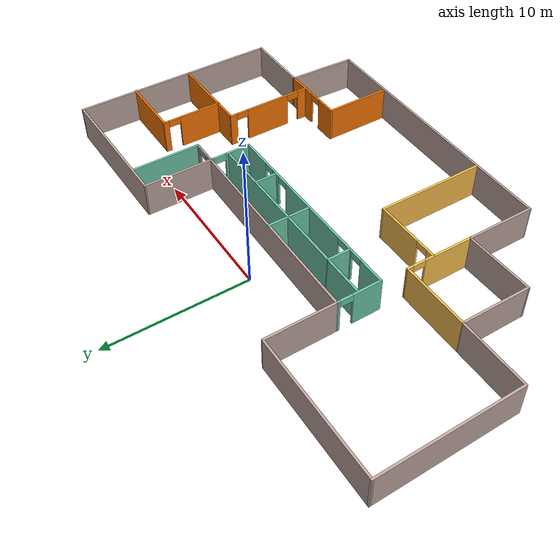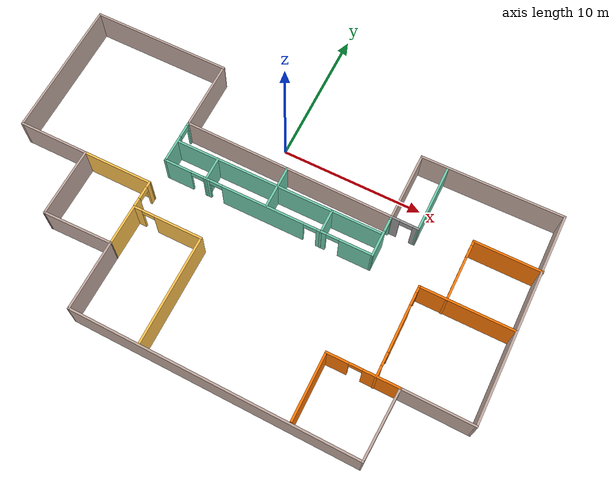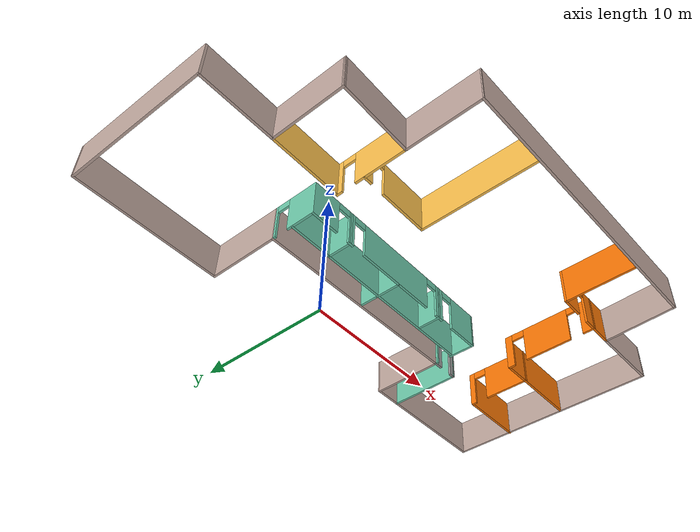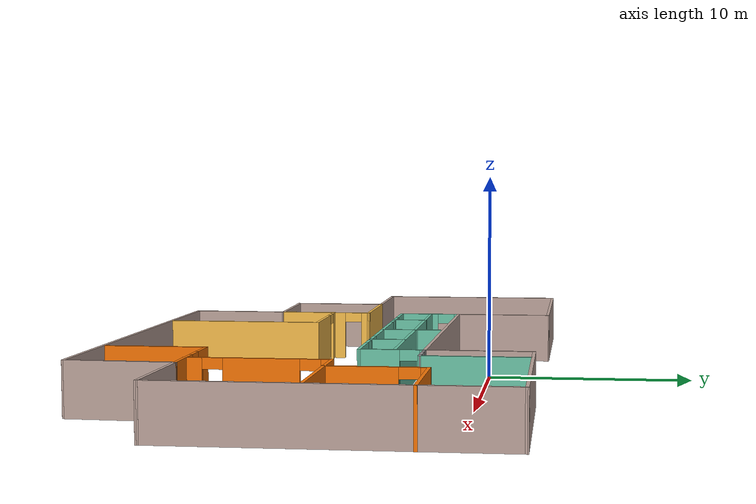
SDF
<?xml version='1.0'?>
<sdf version='1.6'>
  <model name='Building'>
    <pose frame=''>1.31373 -7.11076 0 0 -0 0</pose>
    <link name='Wall_0'>
      <collision name='Wall_0_Collision'>
        <geometry>
          <box>
            <size>10 0.15 2.5</size>
          </box>
        </geometry>
        <pose frame=''>0 0 1.25 0 -0 0</pose>
      </collision>
      <visual name='Wall_0_Visual'>
        <pose frame=''>0 0 1.25 0 -0 0</pose>
        <geometry>
          <box>
            <size>10 0.15 2.5</size>
          </box>
        </geometry>
        <material>
          <script>
            <uri>file://media/materials/scripts/gazebo.material</uri>
            <name>Gazebo/Grey</name>
          </script>
          <ambient>0.760784 0.662745 0.627451 1</ambient>
        </material>
        <meta>
          <layer>0</layer>
        </meta>
      </visual>
      <pose frame=''>-12.3733 9.85668 0 0 0 -0.001793</pose>
    </link>
    <link name='Wall_1'>
      <collision name='Wall_1_Collision'>
        <geometry>
          <box>
            <size>5 0.15 2.5</size>
          </box>
        </geometry>
        <pose frame=''>0 0 1.25 0 -0 0</pose>
      </collision>
      <visual name='Wall_1_Visual'>
        <pose frame=''>0 0 1.25 0 -0 0</pose>
        <geometry>
          <box>
            <size>5 0.15 2.5</size>
          </box>
        </geometry>
        <material>
          <script>
            <uri>file://media/materials/scripts/gazebo.material</uri>
            <name>Gazebo/Grey</name>
          </script>
          <ambient>0.760784 0.662745 0.627451 1</ambient>
        </material>
        <meta>
          <layer>0</layer>
        </meta>
      </visual>
      <pose frame=''>-7.44769 7.42291 0 0 0 -1.57056</pose>
    </link>
    <link name='Wall_10'>
      <collision name='Wall_10_Collision'>
        <geometry>
          <box>
            <size>4.99971 0.15 2.5</size>
          </box>
        </geometry>
        <pose frame=''>0 0 1.25 0 -0 0</pose>
      </collision>
      <visual name='Wall_10_Visual'>
        <pose frame=''>0 0 1.25 0 -0 0</pose>
        <geometry>
          <box>
            <size>4.99971 0.15 2.5</size>
          </box>
        </geometry>
        <material>
          <script>
            <uri>file://media/materials/scripts/gazebo.material</uri>
            <name>Gazebo/Grey</name>
          </script>
          <ambient>0.760784 0.662745 0.627451 1</ambient>
        </material>
        <meta>
          <layer>0</layer>
        </meta>
      </visual>
      <pose frame=''>-10.0229 -4.78917 0 0 0 -3.1229</pose>
    </link>
    <link name='Wall_11'>
      <collision name='Wall_11_Collision'>
        <geometry>
          <box>
            <size>5 0.15 2.5</size>
          </box>
        </geometry>
        <pose frame=''>0 0 1.25 0 -0 0</pose>
      </collision>
      <visual name='Wall_11_Visual'>
        <pose frame=''>0 0 1.25 0 -0 0</pose>
        <geometry>
          <box>
            <size>5 0.15 2.5</size>
          </box>
        </geometry>
        <material>
          <script>
            <uri>file://media/materials/scripts/gazebo.material</uri>
            <name>Gazebo/Grey</name>
          </script>
          <ambient>0.760784 0.662745 0.627451 1</ambient>
        </material>
        <meta>
          <layer>0</layer>
        </meta>
      </visual>
      <pose frame=''>-12.4242 -2.40949 0 0 -0 1.56126</pose>
    </link>
    <link name='Wall_12'>
      <collision name='Wall_12_Collision'>
        <geometry>
          <box>
            <size>5 0.15 2.5</size>
          </box>
        </geometry>
        <pose frame=''>0 0 1.25 0 -0 0</pose>
      </collision>
      <visual name='Wall_12_Visual'>
        <pose frame=''>0 0 1.25 0 -0 0</pose>
        <geometry>
          <box>
            <size>5 0.15 2.5</size>
          </box>
        </geometry>
        <material>
          <script>
            <uri>file://media/materials/scripts/gazebo.material</uri>
            <name>Gazebo/Grey</name>
          </script>
          <ambient>0.760784 0.662745 0.627451 1</ambient>
        </material>
        <meta>
          <layer>0</layer>
        </meta>
      </visual>
      <pose frame=''>-14.826 0.015509 0 0 -0 3.14159</pose>
    </link>
    <link name='Wall_13'>
      <collision name='Wall_13_Collision'>
        <geometry>
          <box>
            <size>10.001 0.15 2.5</size>
          </box>
        </geometry>
        <pose frame=''>0 0 1.25 0 -0 0</pose>
      </collision>
      <visual name='Wall_13_Visual'>
        <pose frame=''>0 0 1.25 0 -0 0</pose>
        <geometry>
          <box>
            <size>10.001 0.15 2.5</size>
          </box>
        </geometry>
        <material>
          <script>
            <uri>file://media/materials/scripts/gazebo.material</uri>
            <name>Gazebo/Grey</name>
          </script>
          <ambient>0.760784 0.662745 0.627451 1</ambient>
        </material>
        <meta>
          <layer>0</layer>
        </meta>
      </visual>
      <pose frame=''>-17.2978 4.94051 0 0 -0 1.57089</pose>
    </link>
    <link name='Wall_15'>
      <collision name='Wall_15_Collision'>
        <geometry>
          <box>
            <size>5 0.15 2.5</size>
          </box>
        </geometry>
        <pose frame=''>0 0 1.25 0 -0 0</pose>
      </collision>
      <visual name='Wall_15_Visual'>
        <pose frame=''>0 0 1.25 0 -0 0</pose>
        <geometry>
          <box>
            <size>5 0.15 2.5</size>
          </box>
        </geometry>
        <material>
          <script>
            <uri>file://media/materials/scripts/gazebo.material</uri>
            <name>Gazebo/Grey</name>
          </script>
          <ambient>1 0.764706 0.305882 1</ambient>
        </material>
        <meta>
          <layer>0</layer>
        </meta>
      </visual>
      <pose frame=''>-9.97604 0.015509 0 0 -0 0</pose>
    </link>
    <link name='Wall_16'>
      <pose frame=''>-7.57474 -2.36417 0 0 0 -1.58075</pose>
      <visual name='Wall_16_Visual_0'>
        <pose frame=''>-2.22457 0 1.25 0 -0 0</pose>
        <geometry>
          <box>
            <size>0.460463 0.15 2.5</size>
          </box>
        </geometry>
        <material>
          <script>
            <uri>file://media/materials/scripts/gazebo.material</uri>
            <name>Gazebo/Grey</name>
          </script>
          <ambient>1 0.764706 0.305882 1</ambient>
        </material>
        <meta>
          <layer>0</layer>
        </meta>
      </visual>
      <collision name='Wall_16_Collision_0'>
        <geometry>
          <box>
            <size>0.460463 0.15 2.5</size>
          </box>
        </geometry>
        <pose frame=''>-2.22457 0 1.25 0 -0 0</pose>
      </collision>
      <visual name='Wall_16_Visual_1'>
        <pose frame=''>0.680232 0 1.25 0 -0 0</pose>
        <geometry>
          <box>
            <size>3.54913 0.15 2.5</size>
          </box>
        </geometry>
        <material>
          <script>
            <uri>file://media/materials/scripts/gazebo.material</uri>
            <name>Gazebo/Grey</name>
          </script>
          <ambient>1 0.764706 0.305882 1</ambient>
        </material>
        <meta>
          <layer>0</layer>
        </meta>
      </visual>
      <collision name='Wall_16_Collision_1'>
        <geometry>
          <box>
            <size>3.54913 0.15 2.5</size>
          </box>
        </geometry>
        <pose frame=''>0.680232 0 1.25 0 -0 0</pose>
      </collision>
      <visual name='Wall_16_Visual_2'>
        <pose frame=''>-1.54433 0 2.25 0 -0 0</pose>
        <geometry>
          <box>
            <size>0.9 0.15 0.5</size>
          </box>
        </geometry>
        <material>
          <script>
            <uri>file://media/materials/scripts/gazebo.material</uri>
            <name>Gazebo/Grey</name>
          </script>
          <ambient>1 0.764706 0.305882 1</ambient>
        </material>
        <meta>
          <layer>0</layer>
        </meta>
      </visual>
      <collision name='Wall_16_Collision_2'>
        <geometry>
          <box>
            <size>0.9 0.15 0.5</size>
          </box>
        </geometry>
        <pose frame=''>-1.54433 0 2.25 0 -0 0</pose>
      </collision>
    </link>
    <link name='Wall_18'>
      <pose frame=''>-5.11415 -1.91143 0 0 -0 0</pose>
      <visual name='Wall_18_Visual_0'>
        <pose frame=''>-2.18036 0 1.25 0 -0 0</pose>
        <geometry>
          <box>
            <size>0.639275 0.15 2.5</size>
          </box>
        </geometry>
        <material>
          <script>
            <uri>file://media/materials/scripts/gazebo.material</uri>
            <name>Gazebo/Grey</name>
          </script>
          <ambient>1 0.764706 0.305882 1</ambient>
        </material>
        <meta>
          <layer>0</layer>
        </meta>
      </visual>
      <collision name='Wall_18_Collision_0'>
        <geometry>
          <box>
            <size>0.639275 0.15 2.5</size>
          </box>
        </geometry>
        <pose frame=''>-2.18036 0 1.25 0 -0 0</pose>
      </collision>
      <visual name='Wall_18_Visual_1'>
        <pose frame=''>0.769638 0 1.25 0 -0 0</pose>
        <geometry>
          <box>
            <size>3.46073 0.15 2.5</size>
          </box>
        </geometry>
        <material>
          <script>
            <uri>file://media/materials/scripts/gazebo.material</uri>
            <name>Gazebo/Grey</name>
          </script>
          <ambient>1 0.764706 0.305882 1</ambient>
        </material>
        <meta>
          <layer>0</layer>
        </meta>
      </visual>
      <collision name='Wall_18_Collision_1'>
        <geometry>
          <box>
            <size>3.46073 0.15 2.5</size>
          </box>
        </geometry>
        <pose frame=''>0.769638 0 1.25 0 -0 0</pose>
      </collision>
      <visual name='Wall_18_Visual_2'>
        <pose frame=''>-1.41073 0 2.25 0 -0 0</pose>
        <geometry>
          <box>
            <size>0.9 0.15 0.5</size>
          </box>
        </geometry>
        <material>
          <script>
            <uri>file://media/materials/scripts/gazebo.material</uri>
            <name>Gazebo/Grey</name>
          </script>
          <ambient>1 0.764706 0.305882 1</ambient>
        </material>
        <meta>
          <layer>0</layer>
        </meta>
      </visual>
      <collision name='Wall_18_Collision_2'>
        <geometry>
          <box>
            <size>0.9 0.15 0.5</size>
          </box>
        </geometry>
        <pose frame=''>-1.41073 0 2.25 0 -0 0</pose>
      </collision>
    </link>
    <link name='Wall_19'>
      <collision name='Wall_19_Collision'>
        <geometry>
          <box>
            <size>7.75 0.15 2.5</size>
          </box>
        </geometry>
        <pose frame=''>0 0 1.25 0 -0 0</pose>
      </collision>
      <visual name='Wall_19_Visual'>
        <pose frame=''>0 0 1.25 0 -0 0</pose>
        <geometry>
          <box>
            <size>7.75 0.15 2.5</size>
          </box>
        </geometry>
        <material>
          <script>
            <uri>file://media/materials/scripts/gazebo.material</uri>
            <name>Gazebo/Grey</name>
          </script>
          <ambient>1 0.764706 0.305882 1</ambient>
        </material>
        <meta>
          <layer>0</layer>
        </meta>
      </visual>
      <pose frame=''>-2.68915 -5.71143 0 0 0 -1.5708</pose>
    </link>
    <link name='Wall_2'>
      <collision name='Wall_2_Collision'>
        <geometry>
          <box>
            <size>15 0.15 2.5</size>
          </box>
        </geometry>
        <pose frame=''>0 0 1.25 0 -0 0</pose>
      </collision>
      <visual name='Wall_2_Visual'>
        <pose frame=''>0 0 1.25 0 -0 0</pose>
        <geometry>
          <box>
            <size>15 0.15 2.5</size>
          </box>
        </geometry>
        <material>
          <script>
            <uri>file://media/materials/scripts/gazebo.material</uri>
            <name>Gazebo/Grey</name>
          </script>
          <ambient>0.760784 0.662745 0.627451 1</ambient>
        </material>
        <meta>
          <layer>0</layer>
        </meta>
      </visual>
      <pose frame=''>-0.022584 4.91485 0 0 0 -0.011195</pose>
    </link>
    <link name='Wall_21'>
      <pose frame=''>9.97569 -5.01695 0 0 -0 3.14159</pose>
      <visual name='Wall_21_Visual_0'>
        <pose frame=''>-1.23973 0 1.25 0 -0 0</pose>
        <geometry>
          <box>
            <size>2.52055 0.15 2.5</size>
          </box>
        </geometry>
        <material>
          <script>
            <uri>file://media/materials/scripts/gazebo.material</uri>
            <name>Gazebo/Grey</name>
          </script>
          <ambient>0.996078 0.47451 0.0196078 1</ambient>
        </material>
        <meta>
          <layer>0</layer>
        </meta>
      </visual>
      <collision name='Wall_21_Collision_0'>
        <geometry>
          <box>
            <size>2.52055 0.15 2.5</size>
          </box>
        </geometry>
        <pose frame=''>-1.23973 0 1.25 0 -0 0</pose>
      </collision>
      <visual name='Wall_21_Visual_1'>
        <pose frame=''>1.71027 0 1.25 0 -0 0</pose>
        <geometry>
          <box>
            <size>1.57945 0.15 2.5</size>
          </box>
        </geometry>
        <material>
          <script>
            <uri>file://media/materials/scripts/gazebo.material</uri>
            <name>Gazebo/Grey</name>
          </script>
          <ambient>0.996078 0.47451 0.0196078 1</ambient>
        </material>
        <meta>
          <layer>0</layer>
        </meta>
      </visual>
      <collision name='Wall_21_Collision_1'>
        <geometry>
          <box>
            <size>1.57945 0.15 2.5</size>
          </box>
        </geometry>
        <pose frame=''>1.71027 0 1.25 0 -0 0</pose>
      </collision>
      <visual name='Wall_21_Visual_2'>
        <pose frame=''>0.470546 0 2.25 0 -0 0</pose>
        <geometry>
          <box>
            <size>0.9 0.15 0.5</size>
          </box>
        </geometry>
        <material>
          <script>
            <uri>file://media/materials/scripts/gazebo.material</uri>
            <name>Gazebo/Grey</name>
          </script>
          <ambient>0.996078 0.47451 0.0196078 1</ambient>
        </material>
        <meta>
          <layer>0</layer>
        </meta>
      </visual>
      <collision name='Wall_21_Collision_2'>
        <geometry>
          <box>
            <size>0.9 0.15 0.5</size>
          </box>
        </geometry>
        <pose frame=''>0.470546 0 2.25 0 -0 0</pose>
      </collision>
    </link>
    <link name='Wall_22'>
      <collision name='Wall_22_Collision'>
        <geometry>
          <box>
            <size>4.75 0.15 2.5</size>
          </box>
        </geometry>
        <pose frame=''>0 0 1.25 0 -0 0</pose>
      </collision>
      <visual name='Wall_22_Visual'>
        <pose frame=''>0 0 1.25 0 -0 0</pose>
        <geometry>
          <box>
            <size>4.75 0.15 2.5</size>
          </box>
        </geometry>
        <material>
          <script>
            <uri>file://media/materials/scripts/gazebo.material</uri>
            <name>Gazebo/Grey</name>
          </script>
          <ambient>0.996078 0.47451 0.0196078 1</ambient>
        </material>
        <meta>
          <layer>0</layer>
        </meta>
      </visual>
      <pose frame=''>7.55069 -7.31695 0 0 0 -1.5708</pose>
    </link>
    <link name='Wall_24'>
      <pose frame=''>-7.44712 3.44797 0 0 0 -1.5708</pose>
      <visual name='Wall_24_Visual_0'>
        <pose frame=''>-1.47429 0 1.25 0 -0 0</pose>
        <geometry>
          <box>
            <size>0.301423 0.15 2.5</size>
          </box>
        </geometry>
        <material>
          <script>
            <uri>file://media/materials/scripts/gazebo.material</uri>
            <name>Gazebo/Grey</name>
          </script>
          <ambient>0.435294 0.796078 0.67451 1</ambient>
        </material>
        <meta>
          <layer>0</layer>
        </meta>
      </visual>
      <collision name='Wall_24_Collision_0'>
        <geometry>
          <box>
            <size>0.301423 0.15 2.5</size>
          </box>
        </geometry>
        <pose frame=''>-1.47429 0 1.25 0 -0 0</pose>
      </collision>
      <visual name='Wall_24_Visual_1'>
        <pose frame=''>0.600711 0 1.25 0 -0 0</pose>
        <geometry>
          <box>
            <size>2.04858 0.15 2.5</size>
          </box>
        </geometry>
        <material>
          <script>
            <uri>file://media/materials/scripts/gazebo.material</uri>
            <name>Gazebo/Grey</name>
          </script>
          <ambient>0.435294 0.796078 0.67451 1</ambient>
        </material>
        <meta>
          <layer>0</layer>
        </meta>
      </visual>
      <collision name='Wall_24_Collision_1'>
        <geometry>
          <box>
            <size>2.04858 0.15 2.5</size>
          </box>
        </geometry>
        <pose frame=''>0.600711 0 1.25 0 -0 0</pose>
      </collision>
      <visual name='Wall_24_Visual_2'>
        <pose frame=''>-0.873577 0 2.25 0 -0 0</pose>
        <geometry>
          <box>
            <size>0.9 0.15 0.5</size>
          </box>
        </geometry>
        <material>
          <script>
            <uri>file://media/materials/scripts/gazebo.material</uri>
            <name>Gazebo/Grey</name>
          </script>
          <ambient>0.435294 0.796078 0.67451 1</ambient>
        </material>
        <meta>
          <layer>0</layer>
        </meta>
      </visual>
      <collision name='Wall_24_Collision_2'>
        <geometry>
          <box>
            <size>0.9 0.15 0.5</size>
          </box>
        </geometry>
        <pose frame=''>-0.873577 0 2.25 0 -0 0</pose>
      </collision>
    </link>
    <link name='Wall_25'>
      <pose frame=''>-0.022119 1.89797 0 0 -0 0</pose>
      <visual name='Wall_25_Visual_0'>
        <pose frame=''>-6.49636 0 1.25 0 -0 0</pose>
        <geometry>
          <box>
            <size>2.00728 0.15 2.5</size>
          </box>
        </geometry>
        <material>
          <script>
            <uri>file://media/materials/scripts/gazebo.material</uri>
            <name>Gazebo/Grey</name>
          </script>
          <ambient>0.435294 0.796078 0.67451 1</ambient>
        </material>
        <meta>
          <layer>0</layer>
        </meta>
      </visual>
      <collision name='Wall_25_Collision_0'>
        <geometry>
          <box>
            <size>2.00728 0.15 2.5</size>
          </box>
        </geometry>
        <pose frame=''>-6.49636 0 1.25 0 -0 0</pose>
      </collision>
      <visual name='Wall_25_Visual_1'>
        <pose frame=''>-4.35832 0 1.25 0 -0 0</pose>
        <geometry>
          <box>
            <size>0.468788 0.15 2.5</size>
          </box>
        </geometry>
        <material>
          <script>
            <uri>file://media/materials/scripts/gazebo.material</uri>
            <name>Gazebo/Grey</name>
          </script>
          <ambient>0.435294 0.796078 0.67451 1</ambient>
        </material>
        <meta>
          <layer>0</layer>
        </meta>
      </visual>
      <collision name='Wall_25_Collision_1'>
        <geometry>
          <box>
            <size>0.468788 0.15 2.5</size>
          </box>
        </geometry>
        <pose frame=''>-4.35832 0 1.25 0 -0 0</pose>
      </collision>
      <visual name='Wall_25_Visual_2'>
        <pose frame=''>-0.282378 0 1.25 0 -0 0</pose>
        <geometry>
          <box>
            <size>5.8831 0.15 2.5</size>
          </box>
        </geometry>
        <material>
          <script>
            <uri>file://media/materials/scripts/gazebo.material</uri>
            <name>Gazebo/Grey</name>
          </script>
          <ambient>0.435294 0.796078 0.67451 1</ambient>
        </material>
        <meta>
          <layer>0</layer>
        </meta>
      </visual>
      <collision name='Wall_25_Collision_2'>
        <geometry>
          <box>
            <size>5.8831 0.15 2.5</size>
          </box>
        </geometry>
        <pose frame=''>-0.282378 0 1.25 0 -0 0</pose>
      </collision>
      <visual name='Wall_25_Visual_3'>
        <pose frame=''>3.90003 0 1.25 0 -0 0</pose>
        <geometry>
          <box>
            <size>0.68171 0.15 2.5</size>
          </box>
        </geometry>
        <material>
          <script>
            <uri>file://media/materials/scripts/gazebo.material</uri>
            <name>Gazebo/Grey</name>
          </script>
          <ambient>0.435294 0.796078 0.67451 1</ambient>
        </material>
        <meta>
          <layer>0</layer>
        </meta>
      </visual>
      <collision name='Wall_25_Collision_3'>
        <geometry>
          <box>
            <size>0.68171 0.15 2.5</size>
          </box>
        </geometry>
        <pose frame=''>3.90003 0 1.25 0 -0 0</pose>
      </collision>
      <visual name='Wall_25_Visual_4'>
        <pose frame=''>6.32044 0 1.25 0 -0 0</pose>
        <geometry>
          <box>
            <size>2.35912 0.15 2.5</size>
          </box>
        </geometry>
        <material>
          <script>
            <uri>file://media/materials/scripts/gazebo.material</uri>
            <name>Gazebo/Grey</name>
          </script>
          <ambient>0.435294 0.796078 0.67451 1</ambient>
        </material>
        <meta>
          <layer>0</layer>
        </meta>
      </visual>
      <collision name='Wall_25_Collision_4'>
        <geometry>
          <box>
            <size>2.35912 0.15 2.5</size>
          </box>
        </geometry>
        <pose frame=''>6.32044 0 1.25 0 -0 0</pose>
      </collision>
      <visual name='Wall_25_Visual_5'>
        <pose frame=''>-5.04272 0 2.25 0 -0 0</pose>
        <geometry>
          <box>
            <size>0.9 0.15 0.5</size>
          </box>
        </geometry>
        <material>
          <script>
            <uri>file://media/materials/scripts/gazebo.material</uri>
            <name>Gazebo/Grey</name>
          </script>
          <ambient>0.435294 0.796078 0.67451 1</ambient>
        </material>
        <meta>
          <layer>0</layer>
        </meta>
      </visual>
      <collision name='Wall_25_Collision_5'>
        <geometry>
          <box>
            <size>0.9 0.15 0.5</size>
          </box>
        </geometry>
        <pose frame=''>-5.04272 0 2.25 0 -0 0</pose>
      </collision>
      <visual name='Wall_25_Visual_6'>
        <pose frame=''>-3.67393 0 2.25 0 -0 0</pose>
        <geometry>
          <box>
            <size>0.9 0.15 0.5</size>
          </box>
        </geometry>
        <material>
          <script>
            <uri>file://media/materials/scripts/gazebo.material</uri>
            <name>Gazebo/Grey</name>
          </script>
          <ambient>0.435294 0.796078 0.67451 1</ambient>
        </material>
        <meta>
          <layer>0</layer>
        </meta>
      </visual>
      <collision name='Wall_25_Collision_6'>
        <geometry>
          <box>
            <size>0.9 0.15 0.5</size>
          </box>
        </geometry>
        <pose frame=''>-3.67393 0 2.25 0 -0 0</pose>
      </collision>
      <visual name='Wall_25_Visual_7'>
        <pose frame=''>3.10917 0 2.25 0 -0 0</pose>
        <geometry>
          <box>
            <size>0.9 0.15 0.5</size>
          </box>
        </geometry>
        <material>
          <script>
            <uri>file://media/materials/scripts/gazebo.material</uri>
            <name>Gazebo/Grey</name>
          </script>
          <ambient>0.435294 0.796078 0.67451 1</ambient>
        </material>
        <meta>
          <layer>0</layer>
        </meta>
      </visual>
      <collision name='Wall_25_Collision_7'>
        <geometry>
          <box>
            <size>0.9 0.15 0.5</size>
          </box>
        </geometry>
        <pose frame=''>3.10917 0 2.25 0 -0 0</pose>
      </collision>
      <visual name='Wall_25_Visual_8'>
        <pose frame=''>4.69088 0 2.25 0 -0 0</pose>
        <geometry>
          <box>
            <size>0.9 0.15 0.5</size>
          </box>
        </geometry>
        <material>
          <script>
            <uri>file://media/materials/scripts/gazebo.material</uri>
            <name>Gazebo/Grey</name>
          </script>
          <ambient>0.435294 0.796078 0.67451 1</ambient>
        </material>
        <meta>
          <layer>0</layer>
        </meta>
      </visual>
      <collision name='Wall_25_Collision_8'>
        <geometry>
          <box>
            <size>0.9 0.15 0.5</size>
          </box>
        </geometry>
        <pose frame=''>4.69088 0 2.25 0 -0 0</pose>
      </collision>
    </link>
    <link name='Wall_26'>
      <pose frame=''>7.40242 3.36485 0 0 -0 1.57111</pose>
      <visual name='Wall_26_Visual_0'>
        <pose frame=''>-0.593608 0 1.25 0 -0 0</pose>
        <geometry>
          <box>
            <size>1.89655 0.15 2.5</size>
          </box>
        </geometry>
        <material>
          <script>
            <uri>file://media/materials/scripts/gazebo.material</uri>
            <name>Gazebo/Grey</name>
          </script>
          <ambient>0.435294 0.796078 0.67451 1</ambient>
        </material>
        <meta>
          <layer>0</layer>
        </meta>
      </visual>
      <collision name='Wall_26_Collision_0'>
        <geometry>
          <box>
            <size>1.89655 0.15 2.5</size>
          </box>
        </geometry>
        <pose frame=''>-0.593608 0 1.25 0 -0 0</pose>
      </collision>
      <visual name='Wall_26_Visual_1'>
        <pose frame=''>1.39827 0 1.25 0 -0 0</pose>
        <geometry>
          <box>
            <size>0.287215 0.15 2.5</size>
          </box>
        </geometry>
        <material>
          <script>
            <uri>file://media/materials/scripts/gazebo.material</uri>
            <name>Gazebo/Grey</name>
          </script>
          <ambient>0.435294 0.796078 0.67451 1</ambient>
        </material>
        <meta>
          <layer>0</layer>
        </meta>
      </visual>
      <collision name='Wall_26_Collision_1'>
        <geometry>
          <box>
            <size>0.287215 0.15 2.5</size>
          </box>
        </geometry>
        <pose frame=''>1.39827 0 1.25 0 -0 0</pose>
      </collision>
      <visual name='Wall_26_Visual_2'>
        <pose frame=''>0.804666 0 2.25 0 -0 0</pose>
        <geometry>
          <box>
            <size>0.9 0.15 0.5</size>
          </box>
        </geometry>
        <material>
          <script>
            <uri>file://media/materials/scripts/gazebo.material</uri>
            <name>Gazebo/Grey</name>
          </script>
          <ambient>0.435294 0.796078 0.67451 1</ambient>
        </material>
        <meta>
          <layer>0</layer>
        </meta>
      </visual>
      <collision name='Wall_26_Collision_2'>
        <geometry>
          <box>
            <size>0.9 0.15 0.5</size>
          </box>
        </geometry>
        <pose frame=''>0.804666 0 2.25 0 -0 0</pose>
      </collision>
    </link>
    <link name='Wall_28'>
      <collision name='Wall_28_Collision'>
        <geometry>
          <box>
            <size>14.75 0.15 2.5</size>
          </box>
        </geometry>
        <pose frame=''>0 0 1.25 0 -0 0</pose>
      </collision>
      <visual name='Wall_28_Visual'>
        <pose frame=''>0 0 1.25 0 -0 0</pose>
        <geometry>
          <box>
            <size>14.75 0.15 2.5</size>
          </box>
        </geometry>
        <material>
          <script>
            <uri>file://media/materials/scripts/gazebo.material</uri>
            <name>Gazebo/Grey</name>
          </script>
          <ambient>0.435294 0.796078 0.67451 1</ambient>
        </material>
        <meta>
          <layer>0</layer>
        </meta>
      </visual>
      <pose frame=''>-0.074889 3.49771 0 0 -0 0</pose>
    </link>
    <link name='Wall_3'>
      <collision name='Wall_3_Collision'>
        <geometry>
          <box>
            <size>4.977 0.15 2.5</size>
          </box>
        </geometry>
        <pose frame=''>0 0 1.25 0 -0 0</pose>
      </collision>
      <visual name='Wall_3_Visual'>
        <pose frame=''>0 0 1.25 0 -0 0</pose>
        <geometry>
          <box>
            <size>4.977 0.15 2.5</size>
          </box>
        </geometry>
        <material>
          <script>
            <uri>file://media/materials/scripts/gazebo.material</uri>
            <name>Gazebo/Grey</name>
          </script>
          <ambient>0.760784 0.662745 0.627451 1</ambient>
        </material>
        <meta>
          <layer>0</layer>
        </meta>
      </visual>
      <pose frame=''>7.40161 7.24525 0 0 -0 1.57094</pose>
    </link>
    <link name='Wall_30'>
      <collision name='Wall_30_Collision'>
        <geometry>
          <box>
            <size>1.5 0.15 2.5</size>
          </box>
        </geometry>
        <pose frame=''>0 0 1.25 0 -0 0</pose>
      </collision>
      <visual name='Wall_30_Visual'>
        <pose frame=''>0 0 1.25 0 -0 0</pose>
        <geometry>
          <box>
            <size>1.5 0.15 2.5</size>
          </box>
        </geometry>
        <material>
          <script>
            <uri>file://media/materials/scripts/gazebo.material</uri>
            <name>Gazebo/Grey</name>
          </script>
          <ambient>0.435294 0.796078 0.67451 1</ambient>
        </material>
        <meta>
          <layer>0</layer>
        </meta>
      </visual>
      <pose frame=''>-0.057706 4.22986 0 0 0 -1.5708</pose>
    </link>
    <link name='Wall_32'>
      <collision name='Wall_32_Collision'>
        <geometry>
          <box>
            <size>1.75 0.15 2.5</size>
          </box>
        </geometry>
        <pose frame=''>0 0 1.25 0 -0 0</pose>
      </collision>
      <visual name='Wall_32_Visual'>
        <pose frame=''>0 0 1.25 0 -0 0</pose>
        <geometry>
          <box>
            <size>1.75 0.15 2.5</size>
          </box>
        </geometry>
        <material>
          <script>
            <uri>file://media/materials/scripts/gazebo.material</uri>
            <name>Gazebo/Grey</name>
          </script>
          <ambient>0.435294 0.796078 0.67451 1</ambient>
        </material>
        <meta>
          <layer>0</layer>
        </meta>
      </visual>
      <pose frame=''>-4.41987 2.69771 0 0 0 -1.5708</pose>
    </link>
    <link name='Wall_36'>
      <collision name='Wall_36_Collision'>
        <geometry>
          <box>
            <size>1.75 0.15 2.5</size>
          </box>
        </geometry>
        <pose frame=''>0 0 1.25 0 -0 0</pose>
      </collision>
      <visual name='Wall_36_Visual'>
        <pose frame=''>0 0 1.25 0 -0 0</pose>
        <geometry>
          <box>
            <size>1.75 0.15 2.5</size>
          </box>
        </geometry>
        <material>
          <script>
            <uri>file://media/materials/scripts/gazebo.material</uri>
            <name>Gazebo/Grey</name>
          </script>
          <ambient>0.435294 0.796078 0.67451 1</ambient>
        </material>
        <meta>
          <layer>0</layer>
        </meta>
      </visual>
      <pose frame=''>-0.057706 2.75486 0 0 0 -1.5708</pose>
    </link>
    <link name='Wall_38'>
      <collision name='Wall_38_Collision'>
        <geometry>
          <box>
            <size>1.75 0.15 2.5</size>
          </box>
        </geometry>
        <pose frame=''>0 0 1.25 0 -0 0</pose>
      </collision>
      <visual name='Wall_38_Visual'>
        <pose frame=''>0 0 1.25 0 -0 0</pose>
        <geometry>
          <box>
            <size>1.75 0.15 2.5</size>
          </box>
        </geometry>
        <material>
          <script>
            <uri>file://media/materials/scripts/gazebo.material</uri>
            <name>Gazebo/Grey</name>
          </script>
          <ambient>0.435294 0.796078 0.67451 1</ambient>
        </material>
        <meta>
          <layer>0</layer>
        </meta>
      </visual>
      <pose frame=''>3.84532 2.68439 0 0 0 -1.5708</pose>
    </link>
    <link name='Wall_4'>
      <collision name='Wall_4_Collision'>
        <geometry>
          <box>
            <size>10 0.15 2.5</size>
          </box>
        </geometry>
        <pose frame=''>0 0 1.25 0 -0 0</pose>
      </collision>
      <visual name='Wall_4_Visual'>
        <pose frame=''>0 0 1.25 0 -0 0</pose>
        <geometry>
          <box>
            <size>10 0.15 2.5</size>
          </box>
        </geometry>
        <material>
          <script>
            <uri>file://media/materials/scripts/gazebo.material</uri>
            <name>Gazebo/Grey</name>
          </script>
          <ambient>0.760784 0.662745 0.627451 1</ambient>
        </material>
        <meta>
          <layer>0</layer>
        </meta>
      </visual>
      <pose frame=''>12.3258 9.71227 0 0 -0 0.010864</pose>
    </link>
    <link name='Wall_40'>
      <collision name='Wall_40_Collision'>
        <geometry>
          <box>
            <size>5 0.15 2.5</size>
          </box>
        </geometry>
        <pose frame=''>0 0 1.25 0 -0 0</pose>
      </collision>
      <visual name='Wall_40_Visual'>
        <pose frame=''>0 0 1.25 0 -0 0</pose>
        <geometry>
          <box>
            <size>5 0.15 2.5</size>
          </box>
        </geometry>
        <material>
          <script>
            <uri>file://media/materials/scripts/gazebo.material</uri>
            <name>Gazebo/Grey</name>
          </script>
          <ambient>0.435294 0.796078 0.67451 1</ambient>
        </material>
        <meta>
          <layer>0</layer>
        </meta>
      </visual>
      <pose frame=''>9.26532 7.23939 0 0 0 -1.5708</pose>
    </link>
    <link name='Wall_41'>
      <pose frame=''>8.33363 4.82306 0 0 -0 3.13228</pose>
      <visual name='Wall_41_Visual_0'>
        <pose frame=''>-0.781737 0 1.25 0 -0 0</pose>
        <geometry>
          <box>
            <size>0.449972 0.15 2.5</size>
          </box>
        </geometry>
        <material>
          <script>
            <uri>file://media/materials/scripts/gazebo.material</uri>
            <name>Gazebo/Grey</name>
          </script>
          <ambient>1 1 1 1</ambient>
        </material>
        <meta>
          <layer>0</layer>
        </meta>
      </visual>
      <collision name='Wall_41_Collision_0'>
        <geometry>
          <box>
            <size>0.449972 0.15 2.5</size>
          </box>
        </geometry>
        <pose frame=''>-0.781737 0 1.25 0 -0 0</pose>
      </collision>
      <visual name='Wall_41_Visual_1'>
        <pose frame=''>0.674986 0 1.25 0 -0 0</pose>
        <geometry>
          <box>
            <size>0.663474 0.15 2.5</size>
          </box>
        </geometry>
        <material>
          <script>
            <uri>file://media/materials/scripts/gazebo.material</uri>
            <name>Gazebo/Grey</name>
          </script>
          <ambient>1 1 1 1</ambient>
        </material>
        <meta>
          <layer>0</layer>
        </meta>
      </visual>
      <collision name='Wall_41_Collision_1'>
        <geometry>
          <box>
            <size>0.663474 0.15 2.5</size>
          </box>
        </geometry>
        <pose frame=''>0.674986 0 1.25 0 -0 0</pose>
      </collision>
      <visual name='Wall_41_Visual_2'>
        <pose frame=''>-0.106751 0 2.25 0 -0 0</pose>
        <geometry>
          <box>
            <size>0.9 0.15 0.5</size>
          </box>
        </geometry>
        <material>
          <script>
            <uri>file://media/materials/scripts/gazebo.material</uri>
            <name>Gazebo/Grey</name>
          </script>
          <ambient>1 1 1 1</ambient>
        </material>
        <meta>
          <layer>0</layer>
        </meta>
      </visual>
      <collision name='Wall_41_Collision_2'>
        <geometry>
          <box>
            <size>0.9 0.15 0.5</size>
          </box>
        </geometry>
        <pose frame=''>-0.106751 0 2.25 0 -0 0</pose>
      </collision>
    </link>
    <link name='Wall_43'>
      <pose frame=''>10.8479 -1.87139 0 0 -0 1.5708</pose>
      <visual name='Wall_43_Visual_0'>
        <pose frame=''>-2.82948 0 1.25 0 -0 0</pose>
        <geometry>
          <box>
            <size>0.841047 0.15 2.5</size>
          </box>
        </geometry>
        <material>
          <script>
            <uri>file://media/materials/scripts/gazebo.material</uri>
            <name>Gazebo/Grey</name>
          </script>
          <ambient>0.996078 0.47451 0.0196078 1</ambient>
        </material>
        <meta>
          <layer>0</layer>
        </meta>
      </visual>
      <collision name='Wall_43_Collision_0'>
        <geometry>
          <box>
            <size>0.841047 0.15 2.5</size>
          </box>
        </geometry>
        <pose frame=''>-2.82948 0 1.25 0 -0 0</pose>
      </collision>
      <visual name='Wall_43_Visual_1'>
        <pose frame=''>0.155063 0 1.25 0 -0 0</pose>
        <geometry>
          <box>
            <size>3.32803 0.15 2.5</size>
          </box>
        </geometry>
        <material>
          <script>
            <uri>file://media/materials/scripts/gazebo.material</uri>
            <name>Gazebo/Grey</name>
          </script>
          <ambient>0.996078 0.47451 0.0196078 1</ambient>
        </material>
        <meta>
          <layer>0</layer>
        </meta>
      </visual>
      <collision name='Wall_43_Collision_1'>
        <geometry>
          <box>
            <size>3.32803 0.15 2.5</size>
          </box>
        </geometry>
        <pose frame=''>0.155063 0 1.25 0 -0 0</pose>
      </collision>
      <visual name='Wall_43_Visual_2'>
        <pose frame=''>2.98454 0 1.25 0 -0 0</pose>
        <geometry>
          <box>
            <size>0.53092 0.15 2.5</size>
          </box>
        </geometry>
        <material>
          <script>
            <uri>file://media/materials/scripts/gazebo.material</uri>
            <name>Gazebo/Grey</name>
          </script>
          <ambient>0.996078 0.47451 0.0196078 1</ambient>
        </material>
        <meta>
          <layer>0</layer>
        </meta>
      </visual>
      <collision name='Wall_43_Collision_2'>
        <geometry>
          <box>
            <size>0.53092 0.15 2.5</size>
          </box>
        </geometry>
        <pose frame=''>2.98454 0 1.25 0 -0 0</pose>
      </collision>
      <visual name='Wall_43_Visual_3'>
        <pose frame=''>-1.95895 0 2.25 0 -0 0</pose>
        <geometry>
          <box>
            <size>0.9 0.15 0.5</size>
          </box>
        </geometry>
        <material>
          <script>
            <uri>file://media/materials/scripts/gazebo.material</uri>
            <name>Gazebo/Grey</name>
          </script>
          <ambient>0.996078 0.47451 0.0196078 1</ambient>
        </material>
        <meta>
          <layer>0</layer>
        </meta>
      </visual>
      <collision name='Wall_43_Collision_3'>
        <geometry>
          <box>
            <size>0.9 0.15 0.5</size>
          </box>
        </geometry>
        <pose frame=''>-1.95895 0 2.25 0 -0 0</pose>
      </collision>
      <visual name='Wall_43_Visual_4'>
        <pose frame=''>2.26908 0 2.25 0 -0 0</pose>
        <geometry>
          <box>
            <size>0.9 0.15 0.5</size>
          </box>
        </geometry>
        <material>
          <script>
            <uri>file://media/materials/scripts/gazebo.material</uri>
            <name>Gazebo/Grey</name>
          </script>
          <ambient>0.996078 0.47451 0.0196078 1</ambient>
        </material>
        <meta>
          <layer>0</layer>
        </meta>
      </visual>
      <collision name='Wall_43_Collision_4'>
        <geometry>
          <box>
            <size>0.9 0.15 0.5</size>
          </box>
        </geometry>
        <pose frame=''>2.26908 0 2.25 0 -0 0</pose>
      </collision>
    </link>
    <link name='Wall_44'>
      <collision name='Wall_44_Collision'>
        <geometry>
          <box>
            <size>6.5 0.15 2.5</size>
          </box>
        </geometry>
        <pose frame=''>0 0 1.25 0 -0 0</pose>
      </collision>
      <visual name='Wall_44_Visual'>
        <pose frame=''>0 0 1.25 0 -0 0</pose>
        <geometry>
          <box>
            <size>6.5 0.15 2.5</size>
          </box>
        </geometry>
        <material>
          <script>
            <uri>file://media/materials/scripts/gazebo.material</uri>
            <name>Gazebo/Grey</name>
          </script>
          <ambient>0.996078 0.47451 0.0196078 1</ambient>
        </material>
        <meta>
          <layer>0</layer>
        </meta>
      </visual>
      <pose frame=''>14.0229 1.30361 0 0 -0 0</pose>
    </link>
    <link name='Wall_46'>
      <pose frame=''>12.6984 3.44428 0 0 -0 1.5708</pose>
      <visual name='Wall_46_Visual_0'>
        <pose frame=''>-0.652813 0 1.25 0 -0 0</pose>
        <geometry>
          <box>
            <size>3.19437 0.15 2.5</size>
          </box>
        </geometry>
        <material>
          <script>
            <uri>file://media/materials/scripts/gazebo.material</uri>
            <name>Gazebo/Grey</name>
          </script>
          <ambient>0.996078 0.47451 0.0196078 1</ambient>
        </material>
        <meta>
          <layer>0</layer>
        </meta>
      </visual>
      <collision name='Wall_46_Collision_0'>
        <geometry>
          <box>
            <size>3.19437 0.15 2.5</size>
          </box>
        </geometry>
        <pose frame=''>-0.652813 0 1.25 0 -0 0</pose>
      </collision>
      <visual name='Wall_46_Visual_1'>
        <pose frame=''>2.04719 0 1.25 0 -0 0</pose>
        <geometry>
          <box>
            <size>0.405627 0.15 2.5</size>
          </box>
        </geometry>
        <material>
          <script>
            <uri>file://media/materials/scripts/gazebo.material</uri>
            <name>Gazebo/Grey</name>
          </script>
          <ambient>0.996078 0.47451 0.0196078 1</ambient>
        </material>
        <meta>
          <layer>0</layer>
        </meta>
      </visual>
      <collision name='Wall_46_Collision_1'>
        <geometry>
          <box>
            <size>0.405627 0.15 2.5</size>
          </box>
        </geometry>
        <pose frame=''>2.04719 0 1.25 0 -0 0</pose>
      </collision>
      <visual name='Wall_46_Visual_2'>
        <pose frame=''>1.39437 0 2.25 0 -0 0</pose>
        <geometry>
          <box>
            <size>0.9 0.15 0.5</size>
          </box>
        </geometry>
        <material>
          <script>
            <uri>file://media/materials/scripts/gazebo.material</uri>
            <name>Gazebo/Grey</name>
          </script>
          <ambient>0.996078 0.47451 0.0196078 1</ambient>
        </material>
        <meta>
          <layer>0</layer>
        </meta>
      </visual>
      <collision name='Wall_46_Collision_2'>
        <geometry>
          <box>
            <size>0.9 0.15 0.5</size>
          </box>
        </geometry>
        <pose frame=''>1.39437 0 2.25 0 -0 0</pose>
      </collision>
    </link>
    <link name='Wall_47'>
      <collision name='Wall_47_Collision'>
        <geometry>
          <box>
            <size>4.75 0.15 2.5</size>
          </box>
        </geometry>
        <pose frame=''>0 0 1.25 0 -0 0</pose>
      </collision>
      <visual name='Wall_47_Visual'>
        <pose frame=''>0 0 1.25 0 -0 0</pose>
        <geometry>
          <box>
            <size>4.75 0.15 2.5</size>
          </box>
        </geometry>
        <material>
          <script>
            <uri>file://media/materials/scripts/gazebo.material</uri>
            <name>Gazebo/Grey</name>
          </script>
          <ambient>0.996078 0.47451 0.0196078 1</ambient>
        </material>
        <meta>
          <layer>0</layer>
        </meta>
      </visual>
      <pose frame=''>14.9984 5.61928 0 0 -0 0</pose>
    </link>
    <link name='Wall_5'>
      <collision name='Wall_5_Collision'>
        <geometry>
          <box>
            <size>15 0.15 2.5</size>
          </box>
        </geometry>
        <pose frame=''>0 0 1.25 0 -0 0</pose>
      </collision>
      <visual name='Wall_5_Visual'>
        <pose frame=''>0 0 1.25 0 -0 0</pose>
        <geometry>
          <box>
            <size>15 0.15 2.5</size>
          </box>
        </geometry>
        <material>
          <script>
            <uri>file://media/materials/scripts/gazebo.material</uri>
            <name>Gazebo/Grey</name>
          </script>
          <ambient>0.760784 0.662745 0.627451 1</ambient>
        </material>
        <meta>
          <layer>0</layer>
        </meta>
      </visual>
      <pose frame=''>17.2503 2.34085 0 0 0 -1.5708</pose>
    </link>
    <link name='Wall_6'>
      <collision name='Wall_6_Collision'>
        <geometry>
          <box>
            <size>5 0.15 2.5</size>
          </box>
        </geometry>
        <pose frame=''>0 0 1.25 0 -0 0</pose>
      </collision>
      <visual name='Wall_6_Visual'>
        <pose frame=''>0 0 1.25 0 -0 0</pose>
        <geometry>
          <box>
            <size>5 0.15 2.5</size>
          </box>
        </geometry>
        <material>
          <script>
            <uri>file://media/materials/scripts/gazebo.material</uri>
            <name>Gazebo/Grey</name>
          </script>
          <ambient>0.760784 0.662745 0.627451 1</ambient>
        </material>
        <meta>
          <layer>0</layer>
        </meta>
      </visual>
      <pose frame=''>14.8255 -5.05051 0 0 -0 3.12775</pose>
    </link>
    <link name='Wall_7'>
      <collision name='Wall_7_Collision'>
        <geometry>
          <box>
            <size>5 0.15 2.5</size>
          </box>
        </geometry>
        <pose frame=''>0 0 1.25 0 -0 0</pose>
      </collision>
      <visual name='Wall_7_Visual'>
        <pose frame=''>0 0 1.25 0 -0 0</pose>
        <geometry>
          <box>
            <size>5 0.15 2.5</size>
          </box>
        </geometry>
        <material>
          <script>
            <uri>file://media/materials/scripts/gazebo.material</uri>
            <name>Gazebo/Grey</name>
          </script>
          <ambient>0.760784 0.662745 0.627451 1</ambient>
        </material>
        <meta>
          <layer>0</layer>
        </meta>
      </visual>
      <pose frame=''>12.3037 -7.44001 0 0 0 -1.61079</pose>
    </link>
    <link name='Wall_8'>
      <collision name='Wall_8_Collision'>
        <geometry>
          <box>
            <size>20 0.15 2.5</size>
          </box>
        </geometry>
        <pose frame=''>0 0 1.25 0 -0 0</pose>
      </collision>
      <visual name='Wall_8_Visual'>
        <pose frame=''>0 0 1.25 0 -0 0</pose>
        <geometry>
          <box>
            <size>20 0.15 2.5</size>
          </box>
        </geometry>
        <material>
          <script>
            <uri>file://media/materials/scripts/gazebo.material</uri>
            <name>Gazebo/Grey</name>
          </script>
          <ambient>0.760784 0.662745 0.627451 1</ambient>
        </material>
        <meta>
          <layer>0</layer>
        </meta>
      </visual>
      <pose frame=''>2.2827 -9.72813 0 0 -0 3.128</pose>
    </link>
    <link name='Wall_9'>
      <collision name='Wall_9_Collision'>
        <geometry>
          <box>
            <size>4.93835 0.15 2.5</size>
          </box>
        </geometry>
        <pose frame=''>0 0 1.25 0 -0 0</pose>
      </collision>
      <visual name='Wall_9_Visual'>
        <pose frame=''>0 0 1.25 0 -0 0</pose>
        <geometry>
          <box>
            <size>4.93835 0.15 2.5</size>
          </box>
        </geometry>
        <material>
          <script>
            <uri>file://media/materials/scripts/gazebo.material</uri>
            <name>Gazebo/Grey</name>
          </script>
          <ambient>0.760784 0.662745 0.627451 1</ambient>
        </material>
        <meta>
          <layer>0</layer>
        </meta>
      </visual>
      <pose frame=''>-7.61991 -7.19911 0 0 -0 1.56183</pose>
    </link>
    <static>1</static>
  </model>
</sdf>
